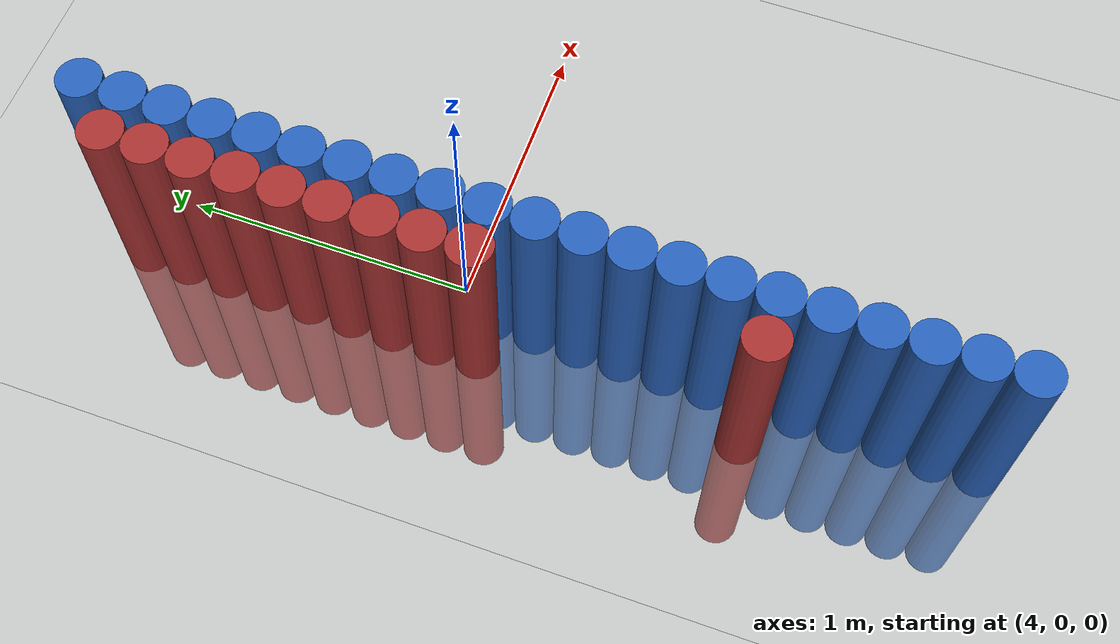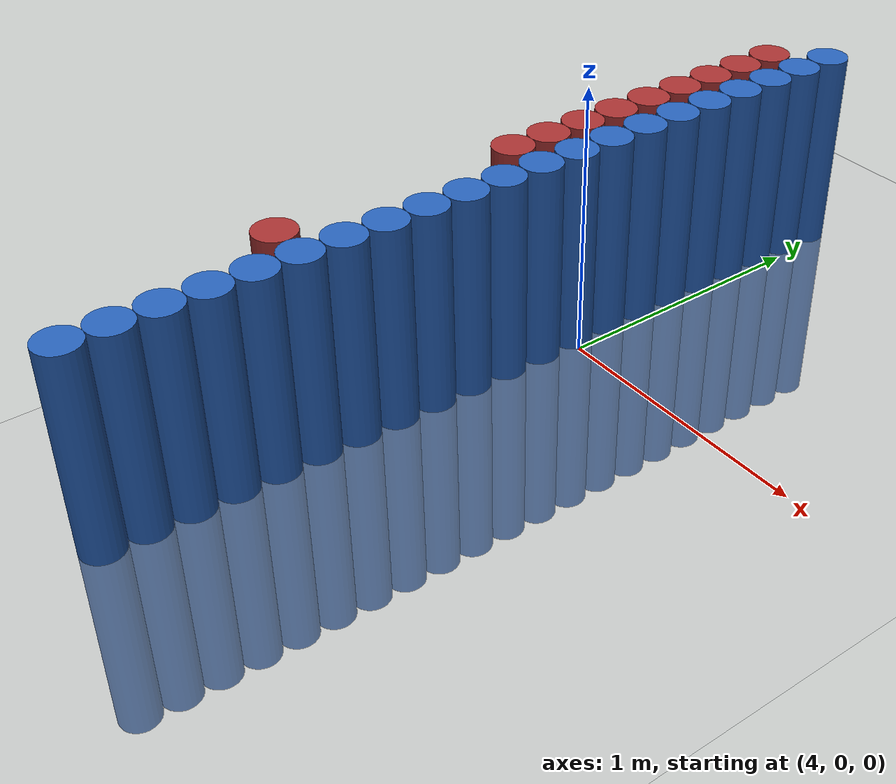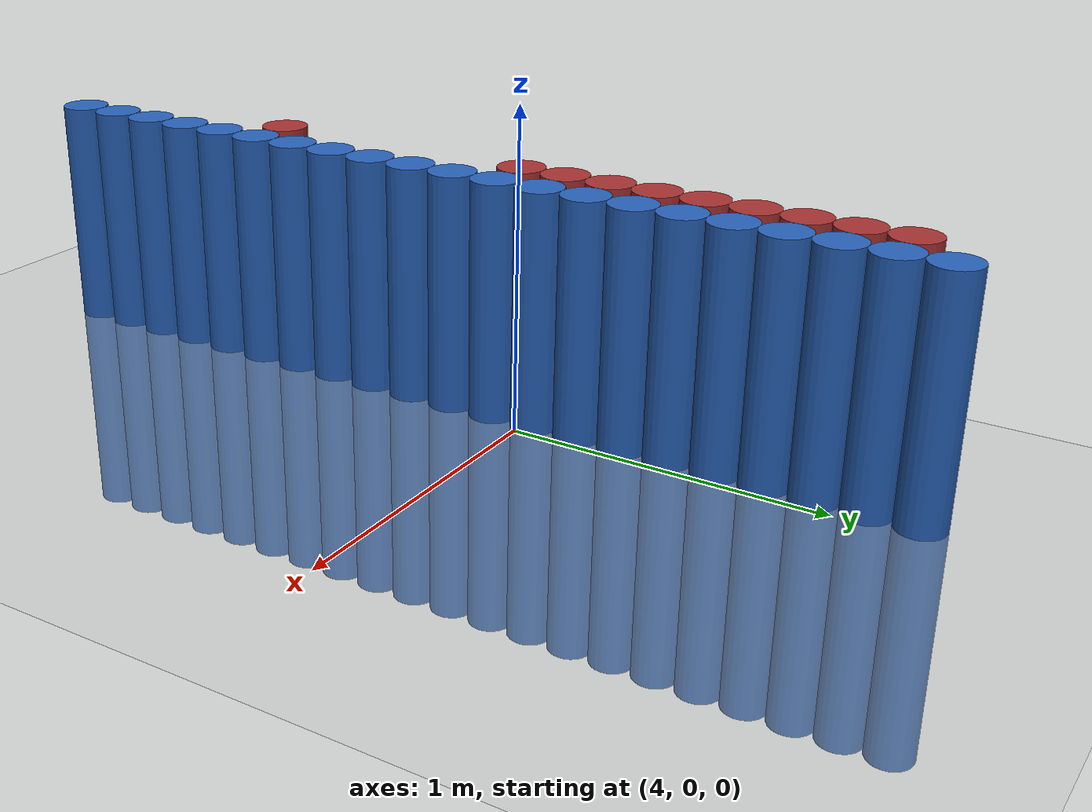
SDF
<sdf version="1.6">
 <world name="default">
  <model name="ground_plane">
   <static>1</static>
   <link name="link">
    <collision name="collision">
     <geometry><plane><normal>0 0 1</normal><size>100 100</size></plane></geometry>
     <surface><friction><ode><mu>100</mu><mu2>50</mu2></ode></friction></surface>
    </collision>
    <visual name="visual">
     <cast_shadows>0</cast_shadows>
     <geometry><plane><normal>0 0 1</normal><size>100 100</size></plane></geometry>
     <material>
      <script><uri>file://media/materials/scripts/gazebo.material</uri><name>Gazebo/Grey</name></script>
     </material>
    </visual>
   </link>
  </model>
  <model name="unit_cylinder_90">
   <static>1</static>
   <pose>3.925000 -1.775000 0.000000 0.000000 0.000000 0.000000</pose>
   <link name="link">
    <inertial>
     <mass>1</mass>
     <inertia><ixx>0.145833</ixx><ixy>0</ixy><ixz>0</ixz><iyy>0.145833</iyy><iyz>0</iyz><izz>0.125</izz></inertia>
    </inertial>
    <collision name="collision">
     <geometry><cylinder><radius>0.075000</radius><length>1.5</length></cylinder></geometry>
    </collision>
    <visual name="visual">
     <geometry><cylinder><radius>0.075000</radius><length>1.5</length></cylinder></geometry>
     <material>
      <ambient>0.152000 0.379000 0.720000 1</ambient>
      <diffuse>0.152000 0.379000 0.720000 1</diffuse>
     </material>
     <material>
      <script><name>Gazebo/Grey</name><uri>file://media/materials/scripts/gazebo.material</uri></script>
     </material>
    </visual>
   </link>
  </model>
  <model name="unit_cylinder_92">
   <static>1</static>
   <pose>3.925000 -1.625000 0.000000 0.000000 0.000000 0.000000</pose>
   <link name="link">
    <inertial>
     <mass>1</mass>
     <inertia><ixx>0.145833</ixx><ixy>0</ixy><ixz>0</ixz><iyy>0.145833</iyy><iyz>0</iyz><izz>0.125</izz></inertia>
    </inertial>
    <collision name="collision">
     <geometry><cylinder><radius>0.075000</radius><length>1.5</length></cylinder></geometry>
    </collision>
    <visual name="visual">
     <geometry><cylinder><radius>0.075000</radius><length>1.5</length></cylinder></geometry>
     <material>
      <ambient>0.152000 0.379000 0.720000 1</ambient>
      <diffuse>0.152000 0.379000 0.720000 1</diffuse>
     </material>
     <material>
      <script><name>Gazebo/Grey</name><uri>file://media/materials/scripts/gazebo.material</uri></script>
     </material>
    </visual>
   </link>
  </model>
  <model name="unit_cylinder_94">
   <static>1</static>
   <pose>3.925000 -1.475000 0.000000 0.000000 0.000000 0.000000</pose>
   <link name="link">
    <inertial>
     <mass>1</mass>
     <inertia><ixx>0.145833</ixx><ixy>0</ixy><ixz>0</ixz><iyy>0.145833</iyy><iyz>0</iyz><izz>0.125</izz></inertia>
    </inertial>
    <collision name="collision">
     <geometry><cylinder><radius>0.075000</radius><length>1.5</length></cylinder></geometry>
    </collision>
    <visual name="visual">
     <geometry><cylinder><radius>0.075000</radius><length>1.5</length></cylinder></geometry>
     <material>
      <ambient>0.152000 0.379000 0.720000 1</ambient>
      <diffuse>0.152000 0.379000 0.720000 1</diffuse>
     </material>
     <material>
      <script><name>Gazebo/Grey</name><uri>file://media/materials/scripts/gazebo.material</uri></script>
     </material>
    </visual>
   </link>
  </model>
  <model name="unit_cylinder_96">
   <static>1</static>
   <pose>3.925000 -1.325000 0.000000 0.000000 0.000000 0.000000</pose>
   <link name="link">
    <inertial>
     <mass>1</mass>
     <inertia><ixx>0.145833</ixx><ixy>0</ixy><ixz>0</ixz><iyy>0.145833</iyy><iyz>0</iyz><izz>0.125</izz></inertia>
    </inertial>
    <collision name="collision">
     <geometry><cylinder><radius>0.075000</radius><length>1.5</length></cylinder></geometry>
    </collision>
    <visual name="visual">
     <geometry><cylinder><radius>0.075000</radius><length>1.5</length></cylinder></geometry>
     <material>
      <ambient>0.152000 0.379000 0.720000 1</ambient>
      <diffuse>0.152000 0.379000 0.720000 1</diffuse>
     </material>
     <material>
      <script><name>Gazebo/Grey</name><uri>file://media/materials/scripts/gazebo.material</uri></script>
     </material>
    </visual>
   </link>
  </model>
  <model name="unit_cylinder_98">
   <static>1</static>
   <pose>3.925000 -1.175000 0.000000 0.000000 0.000000 0.000000</pose>
   <link name="link">
    <inertial>
     <mass>1</mass>
     <inertia><ixx>0.145833</ixx><ixy>0</ixy><ixz>0</ixz><iyy>0.145833</iyy><iyz>0</iyz><izz>0.125</izz></inertia>
    </inertial>
    <collision name="collision">
     <geometry><cylinder><radius>0.075000</radius><length>1.5</length></cylinder></geometry>
    </collision>
    <visual name="visual">
     <geometry><cylinder><radius>0.075000</radius><length>1.5</length></cylinder></geometry>
     <material>
      <ambient>0.152000 0.379000 0.720000 1</ambient>
      <diffuse>0.152000 0.379000 0.720000 1</diffuse>
     </material>
     <material>
      <script><name>Gazebo/Grey</name><uri>file://media/materials/scripts/gazebo.material</uri></script>
     </material>
    </visual>
   </link>
  </model>
  <model name="unit_cylinder_100">
   <static>1</static>
   <pose>3.925000 -1.025000 0.000000 0.000000 0.000000 0.000000</pose>
   <link name="link">
    <inertial>
     <mass>1</mass>
     <inertia><ixx>0.145833</ixx><ixy>0</ixy><ixz>0</ixz><iyy>0.145833</iyy><iyz>0</iyz><izz>0.125</izz></inertia>
    </inertial>
    <collision name="collision">
     <geometry><cylinder><radius>0.075000</radius><length>1.5</length></cylinder></geometry>
    </collision>
    <visual name="visual">
     <geometry><cylinder><radius>0.075000</radius><length>1.5</length></cylinder></geometry>
     <material>
      <ambient>0.152000 0.379000 0.720000 1</ambient>
      <diffuse>0.152000 0.379000 0.720000 1</diffuse>
     </material>
     <material>
      <script><name>Gazebo/Grey</name><uri>file://media/materials/scripts/gazebo.material</uri></script>
     </material>
    </visual>
   </link>
  </model>
  <model name="unit_cylinder_102">
   <static>1</static>
   <pose>3.925000 -0.875000 0.000000 0.000000 0.000000 0.000000</pose>
   <link name="link">
    <inertial>
     <mass>1</mass>
     <inertia><ixx>0.145833</ixx><ixy>0</ixy><ixz>0</ixz><iyy>0.145833</iyy><iyz>0</iyz><izz>0.125</izz></inertia>
    </inertial>
    <collision name="collision">
     <geometry><cylinder><radius>0.075000</radius><length>1.5</length></cylinder></geometry>
    </collision>
    <visual name="visual">
     <geometry><cylinder><radius>0.075000</radius><length>1.5</length></cylinder></geometry>
     <material>
      <ambient>0.152000 0.379000 0.720000 1</ambient>
      <diffuse>0.152000 0.379000 0.720000 1</diffuse>
     </material>
     <material>
      <script><name>Gazebo/Grey</name><uri>file://media/materials/scripts/gazebo.material</uri></script>
     </material>
    </visual>
   </link>
  </model>
  <model name="unit_cylinder_104">
   <static>1</static>
   <pose>3.925000 -0.725000 0.000000 0.000000 0.000000 0.000000</pose>
   <link name="link">
    <inertial>
     <mass>1</mass>
     <inertia><ixx>0.145833</ixx><ixy>0</ixy><ixz>0</ixz><iyy>0.145833</iyy><iyz>0</iyz><izz>0.125</izz></inertia>
    </inertial>
    <collision name="collision">
     <geometry><cylinder><radius>0.075000</radius><length>1.5</length></cylinder></geometry>
    </collision>
    <visual name="visual">
     <geometry><cylinder><radius>0.075000</radius><length>1.5</length></cylinder></geometry>
     <material>
      <ambient>0.152000 0.379000 0.720000 1</ambient>
      <diffuse>0.152000 0.379000 0.720000 1</diffuse>
     </material>
     <material>
      <script><name>Gazebo/Grey</name><uri>file://media/materials/scripts/gazebo.material</uri></script>
     </material>
    </visual>
   </link>
  </model>
  <model name="unit_cylinder_106">
   <static>1</static>
   <pose>3.925000 -0.575000 0.000000 0.000000 0.000000 0.000000</pose>
   <link name="link">
    <inertial>
     <mass>1</mass>
     <inertia><ixx>0.145833</ixx><ixy>0</ixy><ixz>0</ixz><iyy>0.145833</iyy><iyz>0</iyz><izz>0.125</izz></inertia>
    </inertial>
    <collision name="collision">
     <geometry><cylinder><radius>0.075000</radius><length>1.5</length></cylinder></geometry>
    </collision>
    <visual name="visual">
     <geometry><cylinder><radius>0.075000</radius><length>1.5</length></cylinder></geometry>
     <material>
      <ambient>0.152000 0.379000 0.720000 1</ambient>
      <diffuse>0.152000 0.379000 0.720000 1</diffuse>
     </material>
     <material>
      <script><name>Gazebo/Grey</name><uri>file://media/materials/scripts/gazebo.material</uri></script>
     </material>
    </visual>
   </link>
  </model>
  <model name="unit_cylinder_108">
   <static>1</static>
   <pose>3.925000 -0.425000 0.000000 0.000000 0.000000 0.000000</pose>
   <link name="link">
    <inertial>
     <mass>1</mass>
     <inertia><ixx>0.145833</ixx><ixy>0</ixy><ixz>0</ixz><iyy>0.145833</iyy><iyz>0</iyz><izz>0.125</izz></inertia>
    </inertial>
    <collision name="collision">
     <geometry><cylinder><radius>0.075000</radius><length>1.5</length></cylinder></geometry>
    </collision>
    <visual name="visual">
     <geometry><cylinder><radius>0.075000</radius><length>1.5</length></cylinder></geometry>
     <material>
      <ambient>0.152000 0.379000 0.720000 1</ambient>
      <diffuse>0.152000 0.379000 0.720000 1</diffuse>
     </material>
     <material>
      <script><name>Gazebo/Grey</name><uri>file://media/materials/scripts/gazebo.material</uri></script>
     </material>
    </visual>
   </link>
  </model>
  <model name="unit_cylinder_110">
   <static>1</static>
   <pose>3.925000 -0.275000 0.000000 0.000000 0.000000 0.000000</pose>
   <link name="link">
    <inertial>
     <mass>1</mass>
     <inertia><ixx>0.145833</ixx><ixy>0</ixy><ixz>0</ixz><iyy>0.145833</iyy><iyz>0</iyz><izz>0.125</izz></inertia>
    </inertial>
    <collision name="collision">
     <geometry><cylinder><radius>0.075000</radius><length>1.5</length></cylinder></geometry>
    </collision>
    <visual name="visual">
     <geometry><cylinder><radius>0.075000</radius><length>1.5</length></cylinder></geometry>
     <material>
      <ambient>0.152000 0.379000 0.720000 1</ambient>
      <diffuse>0.152000 0.379000 0.720000 1</diffuse>
     </material>
     <material>
      <script><name>Gazebo/Grey</name><uri>file://media/materials/scripts/gazebo.material</uri></script>
     </material>
    </visual>
   </link>
  </model>
  <model name="unit_cylinder_112">
   <static>1</static>
   <pose>3.925000 -0.125000 0.000000 0.000000 0.000000 0.000000</pose>
   <link name="link">
    <inertial>
     <mass>1</mass>
     <inertia><ixx>0.145833</ixx><ixy>0</ixy><ixz>0</ixz><iyy>0.145833</iyy><iyz>0</iyz><izz>0.125</izz></inertia>
    </inertial>
    <collision name="collision">
     <geometry><cylinder><radius>0.075000</radius><length>1.5</length></cylinder></geometry>
    </collision>
    <visual name="visual">
     <geometry><cylinder><radius>0.075000</radius><length>1.5</length></cylinder></geometry>
     <material>
      <ambient>0.152000 0.379000 0.720000 1</ambient>
      <diffuse>0.152000 0.379000 0.720000 1</diffuse>
     </material>
     <material>
      <script><name>Gazebo/Grey</name><uri>file://media/materials/scripts/gazebo.material</uri></script>
     </material>
    </visual>
   </link>
  </model>
  <model name="unit_cylinder_114">
   <static>1</static>
   <pose>3.925000 0.025000 0.000000 0.000000 0.000000 0.000000</pose>
   <link name="link">
    <inertial>
     <mass>1</mass>
     <inertia><ixx>0.145833</ixx><ixy>0</ixy><ixz>0</ixz><iyy>0.145833</iyy><iyz>0</iyz><izz>0.125</izz></inertia>
    </inertial>
    <collision name="collision">
     <geometry><cylinder><radius>0.075000</radius><length>1.5</length></cylinder></geometry>
    </collision>
    <visual name="visual">
     <geometry><cylinder><radius>0.075000</radius><length>1.5</length></cylinder></geometry>
     <material>
      <ambient>0.152000 0.379000 0.720000 1</ambient>
      <diffuse>0.152000 0.379000 0.720000 1</diffuse>
     </material>
     <material>
      <script><name>Gazebo/Grey</name><uri>file://media/materials/scripts/gazebo.material</uri></script>
     </material>
    </visual>
   </link>
  </model>
  <model name="unit_cylinder_116">
   <static>1</static>
   <pose>3.925000 0.175000 0.000000 0.000000 0.000000 0.000000</pose>
   <link name="link">
    <inertial>
     <mass>1</mass>
     <inertia><ixx>0.145833</ixx><ixy>0</ixy><ixz>0</ixz><iyy>0.145833</iyy><iyz>0</iyz><izz>0.125</izz></inertia>
    </inertial>
    <collision name="collision">
     <geometry><cylinder><radius>0.075000</radius><length>1.5</length></cylinder></geometry>
    </collision>
    <visual name="visual">
     <geometry><cylinder><radius>0.075000</radius><length>1.5</length></cylinder></geometry>
     <material>
      <ambient>0.152000 0.379000 0.720000 1</ambient>
      <diffuse>0.152000 0.379000 0.720000 1</diffuse>
     </material>
     <material>
      <script><name>Gazebo/Grey</name><uri>file://media/materials/scripts/gazebo.material</uri></script>
     </material>
    </visual>
   </link>
  </model>
  <model name="unit_cylinder_118">
   <static>1</static>
   <pose>3.925000 0.325000 0.000000 0.000000 0.000000 0.000000</pose>
   <link name="link">
    <inertial>
     <mass>1</mass>
     <inertia><ixx>0.145833</ixx><ixy>0</ixy><ixz>0</ixz><iyy>0.145833</iyy><iyz>0</iyz><izz>0.125</izz></inertia>
    </inertial>
    <collision name="collision">
     <geometry><cylinder><radius>0.075000</radius><length>1.5</length></cylinder></geometry>
    </collision>
    <visual name="visual">
     <geometry><cylinder><radius>0.075000</radius><length>1.5</length></cylinder></geometry>
     <material>
      <ambient>0.152000 0.379000 0.720000 1</ambient>
      <diffuse>0.152000 0.379000 0.720000 1</diffuse>
     </material>
     <material>
      <script><name>Gazebo/Grey</name><uri>file://media/materials/scripts/gazebo.material</uri></script>
     </material>
    </visual>
   </link>
  </model>
  <model name="unit_cylinder_120">
   <static>1</static>
   <pose>3.925000 0.475000 0.000000 0.000000 0.000000 0.000000</pose>
   <link name="link">
    <inertial>
     <mass>1</mass>
     <inertia><ixx>0.145833</ixx><ixy>0</ixy><ixz>0</ixz><iyy>0.145833</iyy><iyz>0</iyz><izz>0.125</izz></inertia>
    </inertial>
    <collision name="collision">
     <geometry><cylinder><radius>0.075000</radius><length>1.5</length></cylinder></geometry>
    </collision>
    <visual name="visual">
     <geometry><cylinder><radius>0.075000</radius><length>1.5</length></cylinder></geometry>
     <material>
      <ambient>0.152000 0.379000 0.720000 1</ambient>
      <diffuse>0.152000 0.379000 0.720000 1</diffuse>
     </material>
     <material>
      <script><name>Gazebo/Grey</name><uri>file://media/materials/scripts/gazebo.material</uri></script>
     </material>
    </visual>
   </link>
  </model>
  <model name="unit_cylinder_122">
   <static>1</static>
   <pose>3.925000 0.625000 0.000000 0.000000 0.000000 0.000000</pose>
   <link name="link">
    <inertial>
     <mass>1</mass>
     <inertia><ixx>0.145833</ixx><ixy>0</ixy><ixz>0</ixz><iyy>0.145833</iyy><iyz>0</iyz><izz>0.125</izz></inertia>
    </inertial>
    <collision name="collision">
     <geometry><cylinder><radius>0.075000</radius><length>1.5</length></cylinder></geometry>
    </collision>
    <visual name="visual">
     <geometry><cylinder><radius>0.075000</radius><length>1.5</length></cylinder></geometry>
     <material>
      <ambient>0.152000 0.379000 0.720000 1</ambient>
      <diffuse>0.152000 0.379000 0.720000 1</diffuse>
     </material>
     <material>
      <script><name>Gazebo/Grey</name><uri>file://media/materials/scripts/gazebo.material</uri></script>
     </material>
    </visual>
   </link>
  </model>
  <model name="unit_cylinder_124">
   <static>1</static>
   <pose>3.925000 0.775000 0.000000 0.000000 0.000000 0.000000</pose>
   <link name="link">
    <inertial>
     <mass>1</mass>
     <inertia><ixx>0.145833</ixx><ixy>0</ixy><ixz>0</ixz><iyy>0.145833</iyy><iyz>0</iyz><izz>0.125</izz></inertia>
    </inertial>
    <collision name="collision">
     <geometry><cylinder><radius>0.075000</radius><length>1.5</length></cylinder></geometry>
    </collision>
    <visual name="visual">
     <geometry><cylinder><radius>0.075000</radius><length>1.5</length></cylinder></geometry>
     <material>
      <ambient>0.152000 0.379000 0.720000 1</ambient>
      <diffuse>0.152000 0.379000 0.720000 1</diffuse>
     </material>
     <material>
      <script><name>Gazebo/Grey</name><uri>file://media/materials/scripts/gazebo.material</uri></script>
     </material>
    </visual>
   </link>
  </model>
  <model name="unit_cylinder_126">
   <static>1</static>
   <pose>3.925000 0.925000 0.000000 0.000000 0.000000 0.000000</pose>
   <link name="link">
    <inertial>
     <mass>1</mass>
     <inertia><ixx>0.145833</ixx><ixy>0</ixy><ixz>0</ixz><iyy>0.145833</iyy><iyz>0</iyz><izz>0.125</izz></inertia>
    </inertial>
    <collision name="collision">
     <geometry><cylinder><radius>0.075000</radius><length>1.5</length></cylinder></geometry>
    </collision>
    <visual name="visual">
     <geometry><cylinder><radius>0.075000</radius><length>1.5</length></cylinder></geometry>
     <material>
      <ambient>0.152000 0.379000 0.720000 1</ambient>
      <diffuse>0.152000 0.379000 0.720000 1</diffuse>
     </material>
     <material>
      <script><name>Gazebo/Grey</name><uri>file://media/materials/scripts/gazebo.material</uri></script>
     </material>
    </visual>
   </link>
  </model>
  <model name="unit_cylinder_128">
   <static>1</static>
   <pose>3.925000 1.075000 0.000000 0.000000 0.000000 0.000000</pose>
   <link name="link">
    <inertial>
     <mass>1</mass>
     <inertia><ixx>0.145833</ixx><ixy>0</ixy><ixz>0</ixz><iyy>0.145833</iyy><iyz>0</iyz><izz>0.125</izz></inertia>
    </inertial>
    <collision name="collision">
     <geometry><cylinder><radius>0.075000</radius><length>1.5</length></cylinder></geometry>
    </collision>
    <visual name="visual">
     <geometry><cylinder><radius>0.075000</radius><length>1.5</length></cylinder></geometry>
     <material>
      <ambient>0.152000 0.379000 0.720000 1</ambient>
      <diffuse>0.152000 0.379000 0.720000 1</diffuse>
     </material>
     <material>
      <script><name>Gazebo/Grey</name><uri>file://media/materials/scripts/gazebo.material</uri></script>
     </material>
    </visual>
   </link>
  </model>
  <model name="unit_cylinder_130">
   <static>1</static>
   <pose>3.925000 1.225000 0.000000 0.000000 0.000000 0.000000</pose>
   <link name="link">
    <inertial>
     <mass>1</mass>
     <inertia><ixx>0.145833</ixx><ixy>0</ixy><ixz>0</ixz><iyy>0.145833</iyy><iyz>0</iyz><izz>0.125</izz></inertia>
    </inertial>
    <collision name="collision">
     <geometry><cylinder><radius>0.075000</radius><length>1.5</length></cylinder></geometry>
    </collision>
    <visual name="visual">
     <geometry><cylinder><radius>0.075000</radius><length>1.5</length></cylinder></geometry>
     <material>
      <ambient>0.152000 0.379000 0.720000 1</ambient>
      <diffuse>0.152000 0.379000 0.720000 1</diffuse>
     </material>
     <material>
      <script><name>Gazebo/Grey</name><uri>file://media/materials/scripts/gazebo.material</uri></script>
     </material>
    </visual>
   </link>
  </model>
  <model name="unit_cylinder_536">
   <static>1</static>
   <pose>3.775000 -1.025000 0.000000 0.000000 0.000000 0.000000</pose>
   <link name="link">
    <inertial>
     <mass>1</mass>
     <inertia><ixx>0.145833</ixx><ixy>0</ixy><ixz>0</ixz><iyy>0.145833</iyy><iyz>0</iyz><izz>0.125</izz></inertia>
    </inertial>
    <collision name="collision">
     <geometry><cylinder><radius>0.075000</radius><length>1.5</length></cylinder></geometry>
    </collision>
    <visual name="visual">
     <geometry><cylinder><radius>0.075000</radius><length>1.5</length></cylinder></geometry>
     <material>
      <ambient>0.648000 0.192000 0.192000 1</ambient>
      <diffuse>0.648000 0.192000 0.192000 1</diffuse>
     </material>
     <material>
      <script><name>Gazebo/Grey</name><uri>file://media/materials/scripts/gazebo.material</uri></script>
     </material>
    </visual>
   </link>
  </model>
  <model name="unit_cylinder_537">
   <static>1</static>
   <pose>3.775000 -0.125000 0.000000 0.000000 0.000000 0.000000</pose>
   <link name="link">
    <inertial>
     <mass>1</mass>
     <inertia><ixx>0.145833</ixx><ixy>0</ixy><ixz>0</ixz><iyy>0.145833</iyy><iyz>0</iyz><izz>0.125</izz></inertia>
    </inertial>
    <collision name="collision">
     <geometry><cylinder><radius>0.075000</radius><length>1.5</length></cylinder></geometry>
    </collision>
    <visual name="visual">
     <geometry><cylinder><radius>0.075000</radius><length>1.5</length></cylinder></geometry>
     <material>
      <ambient>0.648000 0.192000 0.192000 1</ambient>
      <diffuse>0.648000 0.192000 0.192000 1</diffuse>
     </material>
     <material>
      <script><name>Gazebo/Grey</name><uri>file://media/materials/scripts/gazebo.material</uri></script>
     </material>
    </visual>
   </link>
  </model>
  <model name="unit_cylinder_538">
   <static>1</static>
   <pose>3.775000 0.025000 0.000000 0.000000 0.000000 0.000000</pose>
   <link name="link">
    <inertial>
     <mass>1</mass>
     <inertia><ixx>0.145833</ixx><ixy>0</ixy><ixz>0</ixz><iyy>0.145833</iyy><iyz>0</iyz><izz>0.125</izz></inertia>
    </inertial>
    <collision name="collision">
     <geometry><cylinder><radius>0.075000</radius><length>1.5</length></cylinder></geometry>
    </collision>
    <visual name="visual">
     <geometry><cylinder><radius>0.075000</radius><length>1.5</length></cylinder></geometry>
     <material>
      <ambient>0.648000 0.192000 0.192000 1</ambient>
      <diffuse>0.648000 0.192000 0.192000 1</diffuse>
     </material>
     <material>
      <script><name>Gazebo/Grey</name><uri>file://media/materials/scripts/gazebo.material</uri></script>
     </material>
    </visual>
   </link>
  </model>
  <model name="unit_cylinder_539">
   <static>1</static>
   <pose>3.775000 0.175000 0.000000 0.000000 0.000000 0.000000</pose>
   <link name="link">
    <inertial>
     <mass>1</mass>
     <inertia><ixx>0.145833</ixx><ixy>0</ixy><ixz>0</ixz><iyy>0.145833</iyy><iyz>0</iyz><izz>0.125</izz></inertia>
    </inertial>
    <collision name="collision">
     <geometry><cylinder><radius>0.075000</radius><length>1.5</length></cylinder></geometry>
    </collision>
    <visual name="visual">
     <geometry><cylinder><radius>0.075000</radius><length>1.5</length></cylinder></geometry>
     <material>
      <ambient>0.648000 0.192000 0.192000 1</ambient>
      <diffuse>0.648000 0.192000 0.192000 1</diffuse>
     </material>
     <material>
      <script><name>Gazebo/Grey</name><uri>file://media/materials/scripts/gazebo.material</uri></script>
     </material>
    </visual>
   </link>
  </model>
  <model name="unit_cylinder_540">
   <static>1</static>
   <pose>3.775000 0.325000 0.000000 0.000000 0.000000 0.000000</pose>
   <link name="link">
    <inertial>
     <mass>1</mass>
     <inertia><ixx>0.145833</ixx><ixy>0</ixy><ixz>0</ixz><iyy>0.145833</iyy><iyz>0</iyz><izz>0.125</izz></inertia>
    </inertial>
    <collision name="collision">
     <geometry><cylinder><radius>0.075000</radius><length>1.5</length></cylinder></geometry>
    </collision>
    <visual name="visual">
     <geometry><cylinder><radius>0.075000</radius><length>1.5</length></cylinder></geometry>
     <material>
      <ambient>0.648000 0.192000 0.192000 1</ambient>
      <diffuse>0.648000 0.192000 0.192000 1</diffuse>
     </material>
     <material>
      <script><name>Gazebo/Grey</name><uri>file://media/materials/scripts/gazebo.material</uri></script>
     </material>
    </visual>
   </link>
  </model>
  <model name="unit_cylinder_541">
   <static>1</static>
   <pose>3.775000 0.475000 0.000000 0.000000 0.000000 0.000000</pose>
   <link name="link">
    <inertial>
     <mass>1</mass>
     <inertia><ixx>0.145833</ixx><ixy>0</ixy><ixz>0</ixz><iyy>0.145833</iyy><iyz>0</iyz><izz>0.125</izz></inertia>
    </inertial>
    <collision name="collision">
     <geometry><cylinder><radius>0.075000</radius><length>1.5</length></cylinder></geometry>
    </collision>
    <visual name="visual">
     <geometry><cylinder><radius>0.075000</radius><length>1.5</length></cylinder></geometry>
     <material>
      <ambient>0.648000 0.192000 0.192000 1</ambient>
      <diffuse>0.648000 0.192000 0.192000 1</diffuse>
     </material>
     <material>
      <script><name>Gazebo/Grey</name><uri>file://media/materials/scripts/gazebo.material</uri></script>
     </material>
    </visual>
   </link>
  </model>
  <model name="unit_cylinder_542">
   <static>1</static>
   <pose>3.775000 0.625000 0.000000 0.000000 0.000000 0.000000</pose>
   <link name="link">
    <inertial>
     <mass>1</mass>
     <inertia><ixx>0.145833</ixx><ixy>0</ixy><ixz>0</ixz><iyy>0.145833</iyy><iyz>0</iyz><izz>0.125</izz></inertia>
    </inertial>
    <collision name="collision">
     <geometry><cylinder><radius>0.075000</radius><length>1.5</length></cylinder></geometry>
    </collision>
    <visual name="visual">
     <geometry><cylinder><radius>0.075000</radius><length>1.5</length></cylinder></geometry>
     <material>
      <ambient>0.648000 0.192000 0.192000 1</ambient>
      <diffuse>0.648000 0.192000 0.192000 1</diffuse>
     </material>
     <material>
      <script><name>Gazebo/Grey</name><uri>file://media/materials/scripts/gazebo.material</uri></script>
     </material>
    </visual>
   </link>
  </model>
  <model name="unit_cylinder_543">
   <static>1</static>
   <pose>3.775000 0.775000 0.000000 0.000000 0.000000 0.000000</pose>
   <link name="link">
    <inertial>
     <mass>1</mass>
     <inertia><ixx>0.145833</ixx><ixy>0</ixy><ixz>0</ixz><iyy>0.145833</iyy><iyz>0</iyz><izz>0.125</izz></inertia>
    </inertial>
    <collision name="collision">
     <geometry><cylinder><radius>0.075000</radius><length>1.5</length></cylinder></geometry>
    </collision>
    <visual name="visual">
     <geometry><cylinder><radius>0.075000</radius><length>1.5</length></cylinder></geometry>
     <material>
      <ambient>0.648000 0.192000 0.192000 1</ambient>
      <diffuse>0.648000 0.192000 0.192000 1</diffuse>
     </material>
     <material>
      <script><name>Gazebo/Grey</name><uri>file://media/materials/scripts/gazebo.material</uri></script>
     </material>
    </visual>
   </link>
  </model>
  <model name="unit_cylinder_544">
   <static>1</static>
   <pose>3.775000 0.925000 0.000000 0.000000 0.000000 0.000000</pose>
   <link name="link">
    <inertial>
     <mass>1</mass>
     <inertia><ixx>0.145833</ixx><ixy>0</ixy><ixz>0</ixz><iyy>0.145833</iyy><iyz>0</iyz><izz>0.125</izz></inertia>
    </inertial>
    <collision name="collision">
     <geometry><cylinder><radius>0.075000</radius><length>1.5</length></cylinder></geometry>
    </collision>
    <visual name="visual">
     <geometry><cylinder><radius>0.075000</radius><length>1.5</length></cylinder></geometry>
     <material>
      <ambient>0.648000 0.192000 0.192000 1</ambient>
      <diffuse>0.648000 0.192000 0.192000 1</diffuse>
     </material>
     <material>
      <script><name>Gazebo/Grey</name><uri>file://media/materials/scripts/gazebo.material</uri></script>
     </material>
    </visual>
   </link>
  </model>
  <model name="unit_cylinder_545">
   <static>1</static>
   <pose>3.775000 1.075000 0.000000 0.000000 0.000000 0.000000</pose>
   <link name="link">
    <inertial>
     <mass>1</mass>
     <inertia><ixx>0.145833</ixx><ixy>0</ixy><ixz>0</ixz><iyy>0.145833</iyy><iyz>0</iyz><izz>0.125</izz></inertia>
    </inertial>
    <collision name="collision">
     <geometry><cylinder><radius>0.075000</radius><length>1.5</length></cylinder></geometry>
    </collision>
    <visual name="visual">
     <geometry><cylinder><radius>0.075000</radius><length>1.5</length></cylinder></geometry>
     <material>
      <ambient>0.648000 0.192000 0.192000 1</ambient>
      <diffuse>0.648000 0.192000 0.192000 1</diffuse>
     </material>
     <material>
      <script><name>Gazebo/Grey</name><uri>file://media/materials/scripts/gazebo.material</uri></script>
     </material>
    </visual>
   </link>
  </model>
  <model name="unit_cylinder_564">
   <static>1</static>
   <pose>3.925000 -1.775000 0.000000 0.000000 0.000000 0.000000</pose>
   <link name="link">
    <inertial>
     <mass>1</mass>
     <inertia><ixx>0.145833</ixx><ixy>0</ixy><ixz>0</ixz><iyy>0.145833</iyy><iyz>0</iyz><izz>0.125</izz></inertia>
    </inertial>
    <collision name="collision">
     <geometry><cylinder><radius>0.075000</radius><length>1.5</length></cylinder></geometry>
    </collision>
    <visual name="visual">
     <geometry><cylinder><radius>0.075000</radius><length>1.5</length></cylinder></geometry>
     <material>
      <ambient>0.152000 0.379000 0.720000 1</ambient>
      <diffuse>0.152000 0.379000 0.720000 1</diffuse>
     </material>
     <material>
      <script><name>Gazebo/Grey</name><uri>file://media/materials/scripts/gazebo.material</uri></script>
     </material>
    </visual>
   </link>
  </model>
  <model name="unit_cylinder_565">
   <static>1</static>
   <pose>3.925000 -1.625000 0.000000 0.000000 0.000000 0.000000</pose>
   <link name="link">
    <inertial>
     <mass>1</mass>
     <inertia><ixx>0.145833</ixx><ixy>0</ixy><ixz>0</ixz><iyy>0.145833</iyy><iyz>0</iyz><izz>0.125</izz></inertia>
    </inertial>
    <collision name="collision">
     <geometry><cylinder><radius>0.075000</radius><length>1.5</length></cylinder></geometry>
    </collision>
    <visual name="visual">
     <geometry><cylinder><radius>0.075000</radius><length>1.5</length></cylinder></geometry>
     <material>
      <ambient>0.152000 0.379000 0.720000 1</ambient>
      <diffuse>0.152000 0.379000 0.720000 1</diffuse>
     </material>
     <material>
      <script><name>Gazebo/Grey</name><uri>file://media/materials/scripts/gazebo.material</uri></script>
     </material>
    </visual>
   </link>
  </model>
  <model name="unit_cylinder_566">
   <static>1</static>
   <pose>3.925000 -1.475000 0.000000 0.000000 0.000000 0.000000</pose>
   <link name="link">
    <inertial>
     <mass>1</mass>
     <inertia><ixx>0.145833</ixx><ixy>0</ixy><ixz>0</ixz><iyy>0.145833</iyy><iyz>0</iyz><izz>0.125</izz></inertia>
    </inertial>
    <collision name="collision">
     <geometry><cylinder><radius>0.075000</radius><length>1.5</length></cylinder></geometry>
    </collision>
    <visual name="visual">
     <geometry><cylinder><radius>0.075000</radius><length>1.5</length></cylinder></geometry>
     <material>
      <ambient>0.152000 0.379000 0.720000 1</ambient>
      <diffuse>0.152000 0.379000 0.720000 1</diffuse>
     </material>
     <material>
      <script><name>Gazebo/Grey</name><uri>file://media/materials/scripts/gazebo.material</uri></script>
     </material>
    </visual>
   </link>
  </model>
  <model name="unit_cylinder_567">
   <static>1</static>
   <pose>3.925000 -1.325000 0.000000 0.000000 0.000000 0.000000</pose>
   <link name="link">
    <inertial>
     <mass>1</mass>
     <inertia><ixx>0.145833</ixx><ixy>0</ixy><ixz>0</ixz><iyy>0.145833</iyy><iyz>0</iyz><izz>0.125</izz></inertia>
    </inertial>
    <collision name="collision">
     <geometry><cylinder><radius>0.075000</radius><length>1.5</length></cylinder></geometry>
    </collision>
    <visual name="visual">
     <geometry><cylinder><radius>0.075000</radius><length>1.5</length></cylinder></geometry>
     <material>
      <ambient>0.152000 0.379000 0.720000 1</ambient>
      <diffuse>0.152000 0.379000 0.720000 1</diffuse>
     </material>
     <material>
      <script><name>Gazebo/Grey</name><uri>file://media/materials/scripts/gazebo.material</uri></script>
     </material>
    </visual>
   </link>
  </model>
  <model name="unit_cylinder_568">
   <static>1</static>
   <pose>3.925000 -1.175000 0.000000 0.000000 0.000000 0.000000</pose>
   <link name="link">
    <inertial>
     <mass>1</mass>
     <inertia><ixx>0.145833</ixx><ixy>0</ixy><ixz>0</ixz><iyy>0.145833</iyy><iyz>0</iyz><izz>0.125</izz></inertia>
    </inertial>
    <collision name="collision">
     <geometry><cylinder><radius>0.075000</radius><length>1.5</length></cylinder></geometry>
    </collision>
    <visual name="visual">
     <geometry><cylinder><radius>0.075000</radius><length>1.5</length></cylinder></geometry>
     <material>
      <ambient>0.152000 0.379000 0.720000 1</ambient>
      <diffuse>0.152000 0.379000 0.720000 1</diffuse>
     </material>
     <material>
      <script><name>Gazebo/Grey</name><uri>file://media/materials/scripts/gazebo.material</uri></script>
     </material>
    </visual>
   </link>
  </model>
  <model name="unit_cylinder_569">
   <static>1</static>
   <pose>3.925000 -1.025000 0.000000 0.000000 0.000000 0.000000</pose>
   <link name="link">
    <inertial>
     <mass>1</mass>
     <inertia><ixx>0.145833</ixx><ixy>0</ixy><ixz>0</ixz><iyy>0.145833</iyy><iyz>0</iyz><izz>0.125</izz></inertia>
    </inertial>
    <collision name="collision">
     <geometry><cylinder><radius>0.075000</radius><length>1.5</length></cylinder></geometry>
    </collision>
    <visual name="visual">
     <geometry><cylinder><radius>0.075000</radius><length>1.5</length></cylinder></geometry>
     <material>
      <ambient>0.152000 0.379000 0.720000 1</ambient>
      <diffuse>0.152000 0.379000 0.720000 1</diffuse>
     </material>
     <material>
      <script><name>Gazebo/Grey</name><uri>file://media/materials/scripts/gazebo.material</uri></script>
     </material>
    </visual>
   </link>
  </model>
  <model name="unit_cylinder_570">
   <static>1</static>
   <pose>3.925000 -0.875000 0.000000 0.000000 0.000000 0.000000</pose>
   <link name="link">
    <inertial>
     <mass>1</mass>
     <inertia><ixx>0.145833</ixx><ixy>0</ixy><ixz>0</ixz><iyy>0.145833</iyy><iyz>0</iyz><izz>0.125</izz></inertia>
    </inertial>
    <collision name="collision">
     <geometry><cylinder><radius>0.075000</radius><length>1.5</length></cylinder></geometry>
    </collision>
    <visual name="visual">
     <geometry><cylinder><radius>0.075000</radius><length>1.5</length></cylinder></geometry>
     <material>
      <ambient>0.152000 0.379000 0.720000 1</ambient>
      <diffuse>0.152000 0.379000 0.720000 1</diffuse>
     </material>
     <material>
      <script><name>Gazebo/Grey</name><uri>file://media/materials/scripts/gazebo.material</uri></script>
     </material>
    </visual>
   </link>
  </model>
  <model name="unit_cylinder_571">
   <static>1</static>
   <pose>3.925000 -0.725000 0.000000 0.000000 0.000000 0.000000</pose>
   <link name="link">
    <inertial>
     <mass>1</mass>
     <inertia><ixx>0.145833</ixx><ixy>0</ixy><ixz>0</ixz><iyy>0.145833</iyy><iyz>0</iyz><izz>0.125</izz></inertia>
    </inertial>
    <collision name="collision">
     <geometry><cylinder><radius>0.075000</radius><length>1.5</length></cylinder></geometry>
    </collision>
    <visual name="visual">
     <geometry><cylinder><radius>0.075000</radius><length>1.5</length></cylinder></geometry>
     <material>
      <ambient>0.152000 0.379000 0.720000 1</ambient>
      <diffuse>0.152000 0.379000 0.720000 1</diffuse>
     </material>
     <material>
      <script><name>Gazebo/Grey</name><uri>file://media/materials/scripts/gazebo.material</uri></script>
     </material>
    </visual>
   </link>
  </model>
  <model name="unit_cylinder_572">
   <static>1</static>
   <pose>3.925000 -0.575000 0.000000 0.000000 0.000000 0.000000</pose>
   <link name="link">
    <inertial>
     <mass>1</mass>
     <inertia><ixx>0.145833</ixx><ixy>0</ixy><ixz>0</ixz><iyy>0.145833</iyy><iyz>0</iyz><izz>0.125</izz></inertia>
    </inertial>
    <collision name="collision">
     <geometry><cylinder><radius>0.075000</radius><length>1.5</length></cylinder></geometry>
    </collision>
    <visual name="visual">
     <geometry><cylinder><radius>0.075000</radius><length>1.5</length></cylinder></geometry>
     <material>
      <ambient>0.152000 0.379000 0.720000 1</ambient>
      <diffuse>0.152000 0.379000 0.720000 1</diffuse>
     </material>
     <material>
      <script><name>Gazebo/Grey</name><uri>file://media/materials/scripts/gazebo.material</uri></script>
     </material>
    </visual>
   </link>
  </model>
  <model name="unit_cylinder_573">
   <static>1</static>
   <pose>3.925000 -0.425000 0.000000 0.000000 0.000000 0.000000</pose>
   <link name="link">
    <inertial>
     <mass>1</mass>
     <inertia><ixx>0.145833</ixx><ixy>0</ixy><ixz>0</ixz><iyy>0.145833</iyy><iyz>0</iyz><izz>0.125</izz></inertia>
    </inertial>
    <collision name="collision">
     <geometry><cylinder><radius>0.075000</radius><length>1.5</length></cylinder></geometry>
    </collision>
    <visual name="visual">
     <geometry><cylinder><radius>0.075000</radius><length>1.5</length></cylinder></geometry>
     <material>
      <ambient>0.152000 0.379000 0.720000 1</ambient>
      <diffuse>0.152000 0.379000 0.720000 1</diffuse>
     </material>
     <material>
      <script><name>Gazebo/Grey</name><uri>file://media/materials/scripts/gazebo.material</uri></script>
     </material>
    </visual>
   </link>
  </model>
  <model name="unit_cylinder_574">
   <static>1</static>
   <pose>3.925000 -0.275000 0.000000 0.000000 0.000000 0.000000</pose>
   <link name="link">
    <inertial>
     <mass>1</mass>
     <inertia><ixx>0.145833</ixx><ixy>0</ixy><ixz>0</ixz><iyy>0.145833</iyy><iyz>0</iyz><izz>0.125</izz></inertia>
    </inertial>
    <collision name="collision">
     <geometry><cylinder><radius>0.075000</radius><length>1.5</length></cylinder></geometry>
    </collision>
    <visual name="visual">
     <geometry><cylinder><radius>0.075000</radius><length>1.5</length></cylinder></geometry>
     <material>
      <ambient>0.152000 0.379000 0.720000 1</ambient>
      <diffuse>0.152000 0.379000 0.720000 1</diffuse>
     </material>
     <material>
      <script><name>Gazebo/Grey</name><uri>file://media/materials/scripts/gazebo.material</uri></script>
     </material>
    </visual>
   </link>
  </model>
  <model name="unit_cylinder_575">
   <static>1</static>
   <pose>3.925000 -0.125000 0.000000 0.000000 0.000000 0.000000</pose>
   <link name="link">
    <inertial>
     <mass>1</mass>
     <inertia><ixx>0.145833</ixx><ixy>0</ixy><ixz>0</ixz><iyy>0.145833</iyy><iyz>0</iyz><izz>0.125</izz></inertia>
    </inertial>
    <collision name="collision">
     <geometry><cylinder><radius>0.075000</radius><length>1.5</length></cylinder></geometry>
    </collision>
    <visual name="visual">
     <geometry><cylinder><radius>0.075000</radius><length>1.5</length></cylinder></geometry>
     <material>
      <ambient>0.152000 0.379000 0.720000 1</ambient>
      <diffuse>0.152000 0.379000 0.720000 1</diffuse>
     </material>
     <material>
      <script><name>Gazebo/Grey</name><uri>file://media/materials/scripts/gazebo.material</uri></script>
     </material>
    </visual>
   </link>
  </model>
  <model name="unit_cylinder_576">
   <static>1</static>
   <pose>3.925000 0.025000 0.000000 0.000000 0.000000 0.000000</pose>
   <link name="link">
    <inertial>
     <mass>1</mass>
     <inertia><ixx>0.145833</ixx><ixy>0</ixy><ixz>0</ixz><iyy>0.145833</iyy><iyz>0</iyz><izz>0.125</izz></inertia>
    </inertial>
    <collision name="collision">
     <geometry><cylinder><radius>0.075000</radius><length>1.5</length></cylinder></geometry>
    </collision>
    <visual name="visual">
     <geometry><cylinder><radius>0.075000</radius><length>1.5</length></cylinder></geometry>
     <material>
      <ambient>0.152000 0.379000 0.720000 1</ambient>
      <diffuse>0.152000 0.379000 0.720000 1</diffuse>
     </material>
     <material>
      <script><name>Gazebo/Grey</name><uri>file://media/materials/scripts/gazebo.material</uri></script>
     </material>
    </visual>
   </link>
  </model>
  <model name="unit_cylinder_577">
   <static>1</static>
   <pose>3.925000 0.175000 0.000000 0.000000 0.000000 0.000000</pose>
   <link name="link">
    <inertial>
     <mass>1</mass>
     <inertia><ixx>0.145833</ixx><ixy>0</ixy><ixz>0</ixz><iyy>0.145833</iyy><iyz>0</iyz><izz>0.125</izz></inertia>
    </inertial>
    <collision name="collision">
     <geometry><cylinder><radius>0.075000</radius><length>1.5</length></cylinder></geometry>
    </collision>
    <visual name="visual">
     <geometry><cylinder><radius>0.075000</radius><length>1.5</length></cylinder></geometry>
     <material>
      <ambient>0.152000 0.379000 0.720000 1</ambient>
      <diffuse>0.152000 0.379000 0.720000 1</diffuse>
     </material>
     <material>
      <script><name>Gazebo/Grey</name><uri>file://media/materials/scripts/gazebo.material</uri></script>
     </material>
    </visual>
   </link>
  </model>
  <model name="unit_cylinder_578">
   <static>1</static>
   <pose>3.925000 0.325000 0.000000 0.000000 0.000000 0.000000</pose>
   <link name="link">
    <inertial>
     <mass>1</mass>
     <inertia><ixx>0.145833</ixx><ixy>0</ixy><ixz>0</ixz><iyy>0.145833</iyy><iyz>0</iyz><izz>0.125</izz></inertia>
    </inertial>
    <collision name="collision">
     <geometry><cylinder><radius>0.075000</radius><length>1.5</length></cylinder></geometry>
    </collision>
    <visual name="visual">
     <geometry><cylinder><radius>0.075000</radius><length>1.5</length></cylinder></geometry>
     <material>
      <ambient>0.152000 0.379000 0.720000 1</ambient>
      <diffuse>0.152000 0.379000 0.720000 1</diffuse>
     </material>
     <material>
      <script><name>Gazebo/Grey</name><uri>file://media/materials/scripts/gazebo.material</uri></script>
     </material>
    </visual>
   </link>
  </model>
  <model name="unit_cylinder_579">
   <static>1</static>
   <pose>3.925000 0.475000 0.000000 0.000000 0.000000 0.000000</pose>
   <link name="link">
    <inertial>
     <mass>1</mass>
     <inertia><ixx>0.145833</ixx><ixy>0</ixy><ixz>0</ixz><iyy>0.145833</iyy><iyz>0</iyz><izz>0.125</izz></inertia>
    </inertial>
    <collision name="collision">
     <geometry><cylinder><radius>0.075000</radius><length>1.5</length></cylinder></geometry>
    </collision>
    <visual name="visual">
     <geometry><cylinder><radius>0.075000</radius><length>1.5</length></cylinder></geometry>
     <material>
      <ambient>0.152000 0.379000 0.720000 1</ambient>
      <diffuse>0.152000 0.379000 0.720000 1</diffuse>
     </material>
     <material>
      <script><name>Gazebo/Grey</name><uri>file://media/materials/scripts/gazebo.material</uri></script>
     </material>
    </visual>
   </link>
  </model>
  <model name="unit_cylinder_580">
   <static>1</static>
   <pose>3.925000 0.625000 0.000000 0.000000 0.000000 0.000000</pose>
   <link name="link">
    <inertial>
     <mass>1</mass>
     <inertia><ixx>0.145833</ixx><ixy>0</ixy><ixz>0</ixz><iyy>0.145833</iyy><iyz>0</iyz><izz>0.125</izz></inertia>
    </inertial>
    <collision name="collision">
     <geometry><cylinder><radius>0.075000</radius><length>1.5</length></cylinder></geometry>
    </collision>
    <visual name="visual">
     <geometry><cylinder><radius>0.075000</radius><length>1.5</length></cylinder></geometry>
     <material>
      <ambient>0.152000 0.379000 0.720000 1</ambient>
      <diffuse>0.152000 0.379000 0.720000 1</diffuse>
     </material>
     <material>
      <script><name>Gazebo/Grey</name><uri>file://media/materials/scripts/gazebo.material</uri></script>
     </material>
    </visual>
   </link>
  </model>
  <model name="unit_cylinder_581">
   <static>1</static>
   <pose>3.925000 0.775000 0.000000 0.000000 0.000000 0.000000</pose>
   <link name="link">
    <inertial>
     <mass>1</mass>
     <inertia><ixx>0.145833</ixx><ixy>0</ixy><ixz>0</ixz><iyy>0.145833</iyy><iyz>0</iyz><izz>0.125</izz></inertia>
    </inertial>
    <collision name="collision">
     <geometry><cylinder><radius>0.075000</radius><length>1.5</length></cylinder></geometry>
    </collision>
    <visual name="visual">
     <geometry><cylinder><radius>0.075000</radius><length>1.5</length></cylinder></geometry>
     <material>
      <ambient>0.152000 0.379000 0.720000 1</ambient>
      <diffuse>0.152000 0.379000 0.720000 1</diffuse>
     </material>
     <material>
      <script><name>Gazebo/Grey</name><uri>file://media/materials/scripts/gazebo.material</uri></script>
     </material>
    </visual>
   </link>
  </model>
  <model name="unit_cylinder_582">
   <static>1</static>
   <pose>3.925000 0.925000 0.000000 0.000000 0.000000 0.000000</pose>
   <link name="link">
    <inertial>
     <mass>1</mass>
     <inertia><ixx>0.145833</ixx><ixy>0</ixy><ixz>0</ixz><iyy>0.145833</iyy><iyz>0</iyz><izz>0.125</izz></inertia>
    </inertial>
    <collision name="collision">
     <geometry><cylinder><radius>0.075000</radius><length>1.5</length></cylinder></geometry>
    </collision>
    <visual name="visual">
     <geometry><cylinder><radius>0.075000</radius><length>1.5</length></cylinder></geometry>
     <material>
      <ambient>0.152000 0.379000 0.720000 1</ambient>
      <diffuse>0.152000 0.379000 0.720000 1</diffuse>
     </material>
     <material>
      <script><name>Gazebo/Grey</name><uri>file://media/materials/scripts/gazebo.material</uri></script>
     </material>
    </visual>
   </link>
  </model>
  <model name="unit_cylinder_583">
   <static>1</static>
   <pose>3.925000 1.075000 0.000000 0.000000 0.000000 0.000000</pose>
   <link name="link">
    <inertial>
     <mass>1</mass>
     <inertia><ixx>0.145833</ixx><ixy>0</ixy><ixz>0</ixz><iyy>0.145833</iyy><iyz>0</iyz><izz>0.125</izz></inertia>
    </inertial>
    <collision name="collision">
     <geometry><cylinder><radius>0.075000</radius><length>1.5</length></cylinder></geometry>
    </collision>
    <visual name="visual">
     <geometry><cylinder><radius>0.075000</radius><length>1.5</length></cylinder></geometry>
     <material>
      <ambient>0.152000 0.379000 0.720000 1</ambient>
      <diffuse>0.152000 0.379000 0.720000 1</diffuse>
     </material>
     <material>
      <script><name>Gazebo/Grey</name><uri>file://media/materials/scripts/gazebo.material</uri></script>
     </material>
    </visual>
   </link>
  </model>
 </world>
</sdf>
